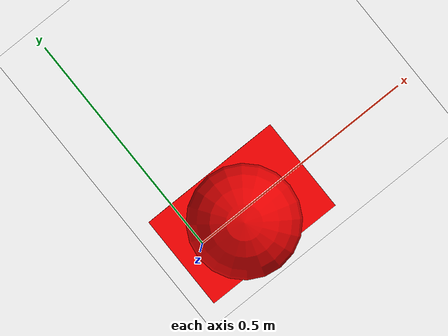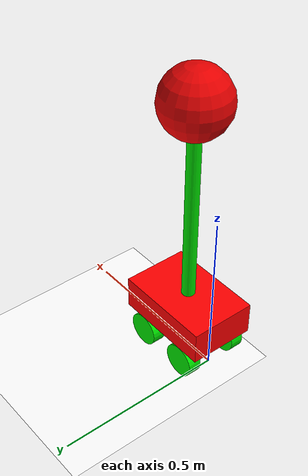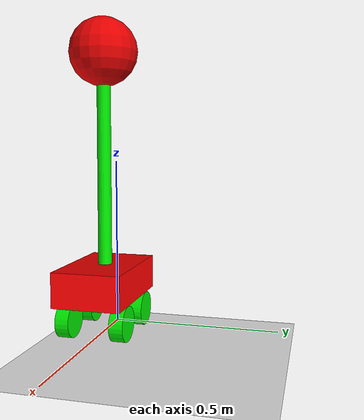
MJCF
<mujoco>
  <option timestep="0.001" o_solref="-100000 -1000" gravity="0 0 -9.81">
    <flag override="enable"/>
  </option>
  <worldbody>
    <light diffuse=".5 .5 .5" pos="0 0 3" dir="0 0 -1"/>
    <geom type="plane" size="1 1 0.1" rgba="1 1 1 1"/>
    <body pos=".1 0 .15" euler="0 90 0">
      <joint type="free"/>
      <geom type="box" size=".05 .1 .15" rgba="1 0 0 1"/>
      <body pos=".1 .08 -.08" euler="90 0 0">
        <joint type="hinge" name="back-left-wheel" axis="0 0 -1"/>
        <geom type="cylinder" size=".05 .02" rgba="0 .9 0 1"/>
      </body>
      <body pos=".1 -.08 -.08" euler="90 0 0">
        <joint type="hinge" name="back-right-wheel" axis="0 0 -1"/>
        <geom type="cylinder" size=".05 .02" rgba="0 .9 0 1"/>
      </body>
      <body pos=".1 .08 .08" euler="90 0 0">
        <joint type="hinge" name="front-left-wheel" axis="0 0 -1"/>
        <geom type="cylinder" size=".05 .02" rgba="0 .9 0 1"/>
      </body>
      <body pos=".1 -.08 .08" euler="90 0 0">
        <joint type="hinge" name="front-right-wheel" axis="0 0 -1"/>
        <geom type="cylinder" size=".05 .02" rgba="0 .9 0 1"/>
      </body>
      <body pos="-.35 0 0" euler="0 90 0">
        <joint type="hinge" name="pole" axis="0 1 0" pos="0 0 .3"/>
        <geom type="capsule" size=".02 .3" rgba="0 .9 0 1"/>
        <body pos="0 0 -.32">
          <joint type="ball" name="pole-mass"/>
          <geom type="sphere" size=".1" rgba=".9 0 0 1"/>
        </body>
      </body>
    </body>
  </worldbody>
  <actuator>
    <motor joint="back-left-wheel" ctrlrange="-100 100" gear="1"/>
    <motor joint="back-right-wheel" ctrlrange="-100 100" gear="1"/>
    <motor joint="front-left-wheel" ctrlrange="-100 100" gear="1"/>
    <motor joint="front-right-wheel" ctrlrange="-100 100" gear="1"/>
  </actuator>
</mujoco>
